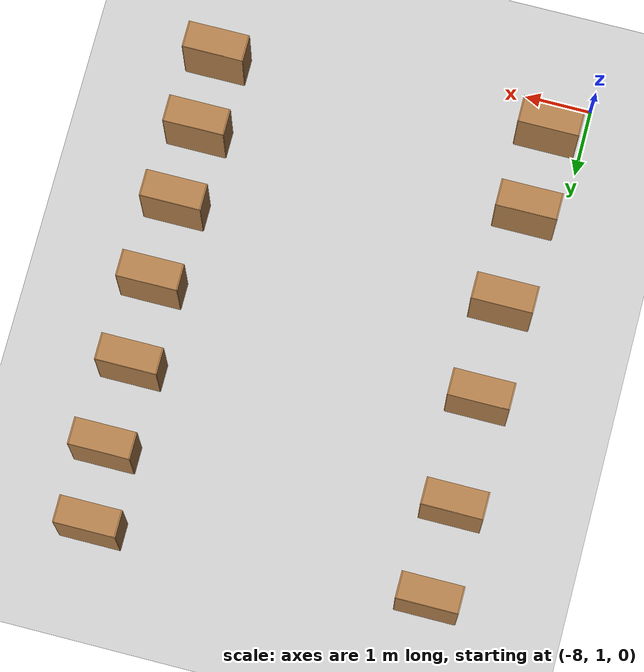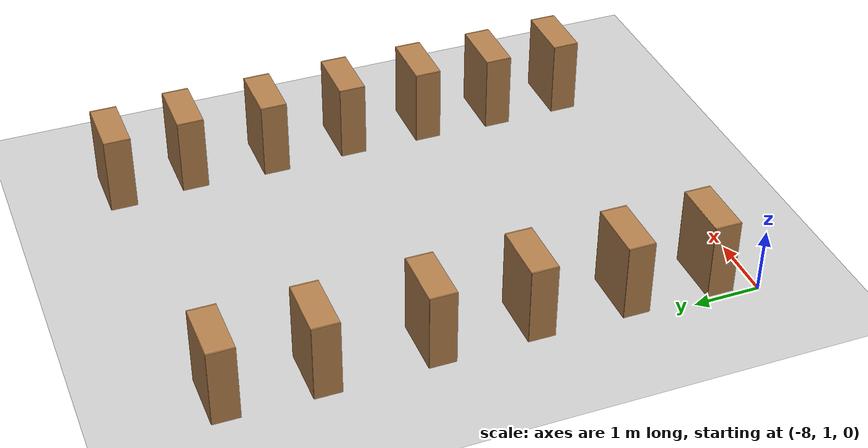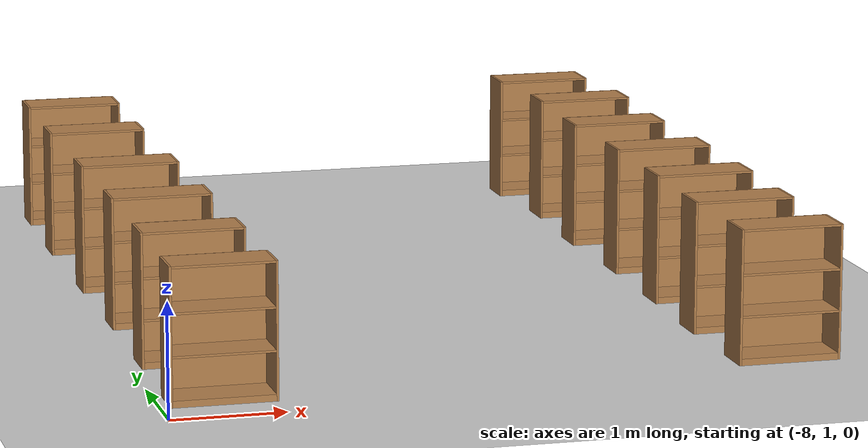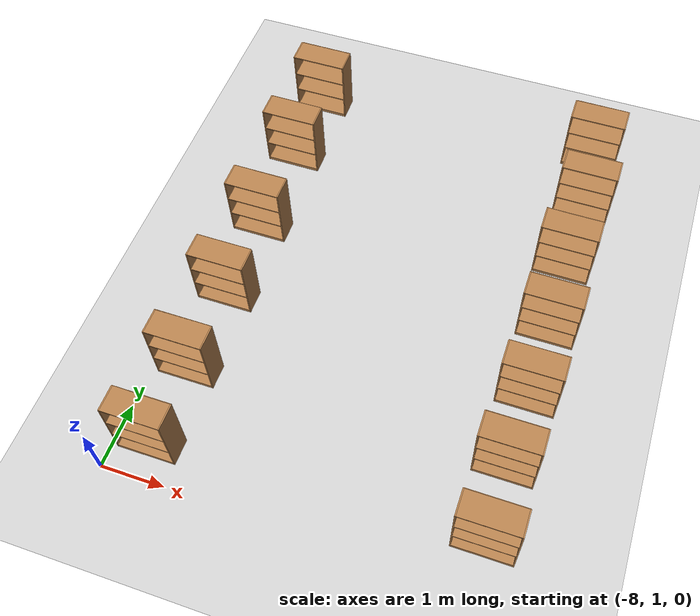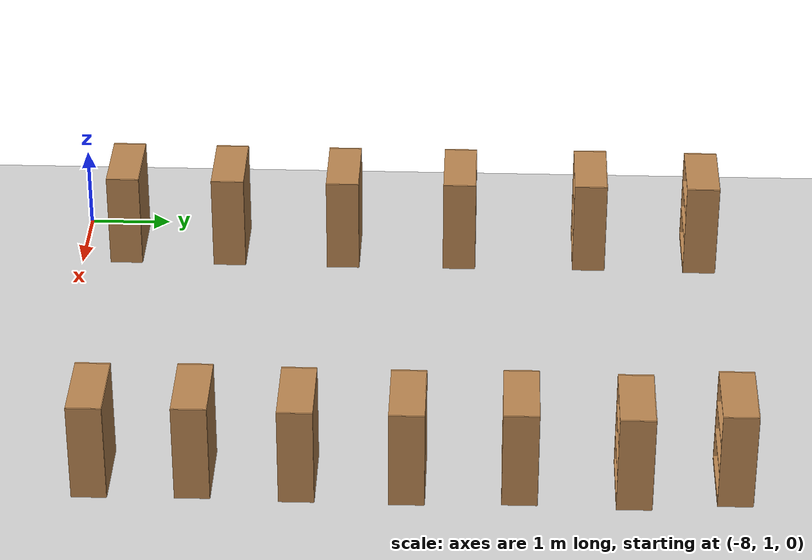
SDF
<sdf version="1.7">
 <world name="default">
  <model name="ground_plane">
   <static>1</static>
   <link name="link">
    <collision name="collision">
     <geometry><plane><normal>0 0 1</normal><size>100 100</size></plane></geometry>
     <surface><friction><ode><mu>100</mu><mu2>50</mu2></ode></friction></surface>
    </collision>
    <visual name="visual">
     <cast_shadows>0</cast_shadows>
     <geometry><plane><normal>0 0 1</normal><size>100 100</size></plane></geometry>
     <material>
      <script><uri>file://media/materials/scripts/gazebo.material</uri><name>Gazebo/Grey</name></script>
     </material>
    </visual>
   </link>
  </model>
  <model name="bookshelf_0">
   <static>1</static>
   <link name="link">
    <inertial><mass>1</mass></inertial>
    <collision name="back">
     <pose>0 0.005 0.6 0 -0 0</pose>
     <geometry><box><size>0.9 0.01 1.2</size></box></geometry>
    </collision>
    <visual name="visual1">
     <pose>0 0.005 0.6 0 -0 0</pose>
     <geometry><box><size>0.9 0.01 1.2</size></box></geometry>
     <material>
      <script><uri>file://media/materials/scripts/gazebo.material</uri><name>Gazebo/Wood</name></script>
     </material>
    </visual>
    <collision name="left_side">
     <pose>0.45 -0.195 0.6 0 -0 0</pose>
     <geometry><box><size>0.02 0.4 1.2</size></box></geometry>
    </collision>
    <visual name="visual2">
     <pose>0.45 -0.195 0.6 0 -0 0</pose>
     <geometry><box><size>0.02 0.4 1.2</size></box></geometry>
     <material>
      <script><uri>file://media/materials/scripts/gazebo.material</uri><name>Gazebo/Wood</name></script>
     </material>
    </visual>
    <collision name="right_side">
     <pose>-0.45 -0.195 0.6 0 -0 0</pose>
     <geometry><box><size>0.02 0.4 1.2</size></box></geometry>
    </collision>
    <visual name="visual3">
     <pose>-0.45 -0.195 0.6 0 -0 0</pose>
     <geometry><box><size>0.02 0.4 1.2</size></box></geometry>
     <material>
      <script><uri>file://media/materials/scripts/gazebo.material</uri><name>Gazebo/Wood</name></script>
     </material>
    </visual>
    <collision name="bottom">
     <pose>0 -0.195 0.03 0 -0 0</pose>
     <geometry><box><size>0.88 0.4 0.06</size></box></geometry>
    </collision>
    <visual name="visual4">
     <pose>0 -0.195 0.03 0 -0 0</pose>
     <geometry><box><size>0.88 0.4 0.06</size></box></geometry>
     <material>
      <script><uri>file://media/materials/scripts/gazebo.material</uri><name>Gazebo/Wood</name></script>
     </material>
    </visual>
    <collision name="top">
     <pose>0 -0.195 1.19 0 -0 0</pose>
     <geometry><box><size>0.88 0.4 0.02</size></box></geometry>
    </collision>
    <visual name="visual5">
     <pose>0 -0.195 1.19 0 -0 0</pose>
     <geometry><box><size>0.88 0.4 0.02</size></box></geometry>
     <material>
      <script><uri>file://media/materials/scripts/gazebo.material</uri><name>Gazebo/Wood</name></script>
     </material>
    </visual>
    <collision name="low_shelf">
     <pose>0 -0.195 0.43 0 -0 0</pose>
     <geometry><box><size>0.88 0.4 0.02</size></box></geometry>
    </collision>
    <visual name="visual6">
     <pose>0 -0.195 0.43 0 -0 0</pose>
     <geometry><box><size>0.88 0.4 0.02</size></box></geometry>
     <material>
      <script><uri>file://media/materials/scripts/gazebo.material</uri><name>Gazebo/Wood</name></script>
     </material>
    </visual>
    <collision name="high_shelf">
     <pose>0 -0.195 0.8 0 -0 0</pose>
     <geometry><box><size>0.88 0.4 0.02</size></box></geometry>
    </collision>
    <visual name="visual7">
     <pose>0 -0.195 0.8 0 -0 0</pose>
     <geometry><box><size>0.88 0.4 0.02</size></box></geometry>
     <material>
      <script><uri>file://media/materials/scripts/gazebo.material</uri><name>Gazebo/Wood</name></script>
     </material>
    </visual>
   </link>
   <pose>-7.44247 8.93177 0 0 -0 0</pose>
  </model>
  <model name="bookshelf_1">
   <static>1</static>
   <link name="link">
    <inertial><mass>1</mass></inertial>
    <collision name="back">
     <pose>0 0.005 0.6 0 -0 0</pose>
     <geometry><box><size>0.9 0.01 1.2</size></box></geometry>
    </collision>
    <visual name="visual1">
     <pose>0 0.005 0.6 0 -0 0</pose>
     <geometry><box><size>0.9 0.01 1.2</size></box></geometry>
     <material>
      <script><uri>file://media/materials/scripts/gazebo.material</uri><name>Gazebo/Wood</name></script>
     </material>
    </visual>
    <collision name="left_side">
     <pose>0.45 -0.195 0.6 0 -0 0</pose>
     <geometry><box><size>0.02 0.4 1.2</size></box></geometry>
    </collision>
    <visual name="visual2">
     <pose>0.45 -0.195 0.6 0 -0 0</pose>
     <geometry><box><size>0.02 0.4 1.2</size></box></geometry>
     <material>
      <script><uri>file://media/materials/scripts/gazebo.material</uri><name>Gazebo/Wood</name></script>
     </material>
    </visual>
    <collision name="right_side">
     <pose>-0.45 -0.195 0.6 0 -0 0</pose>
     <geometry><box><size>0.02 0.4 1.2</size></box></geometry>
    </collision>
    <visual name="visual3">
     <pose>-0.45 -0.195 0.6 0 -0 0</pose>
     <geometry><box><size>0.02 0.4 1.2</size></box></geometry>
     <material>
      <script><uri>file://media/materials/scripts/gazebo.material</uri><name>Gazebo/Wood</name></script>
     </material>
    </visual>
    <collision name="bottom">
     <pose>0 -0.195 0.03 0 -0 0</pose>
     <geometry><box><size>0.88 0.4 0.06</size></box></geometry>
    </collision>
    <visual name="visual4">
     <pose>0 -0.195 0.03 0 -0 0</pose>
     <geometry><box><size>0.88 0.4 0.06</size></box></geometry>
     <material>
      <script><uri>file://media/materials/scripts/gazebo.material</uri><name>Gazebo/Wood</name></script>
     </material>
    </visual>
    <collision name="top">
     <pose>0 -0.195 1.19 0 -0 0</pose>
     <geometry><box><size>0.88 0.4 0.02</size></box></geometry>
    </collision>
    <visual name="visual5">
     <pose>0 -0.195 1.19 0 -0 0</pose>
     <geometry><box><size>0.88 0.4 0.02</size></box></geometry>
     <material>
      <script><uri>file://media/materials/scripts/gazebo.material</uri><name>Gazebo/Wood</name></script>
     </material>
    </visual>
    <collision name="low_shelf">
     <pose>0 -0.195 0.43 0 -0 0</pose>
     <geometry><box><size>0.88 0.4 0.02</size></box></geometry>
    </collision>
    <visual name="visual6">
     <pose>0 -0.195 0.43 0 -0 0</pose>
     <geometry><box><size>0.88 0.4 0.02</size></box></geometry>
     <material>
      <script><uri>file://media/materials/scripts/gazebo.material</uri><name>Gazebo/Wood</name></script>
     </material>
    </visual>
    <collision name="high_shelf">
     <pose>0 -0.195 0.8 0 -0 0</pose>
     <geometry><box><size>0.88 0.4 0.02</size></box></geometry>
    </collision>
    <visual name="visual7">
     <pose>0 -0.195 0.8 0 -0 0</pose>
     <geometry><box><size>0.88 0.4 0.02</size></box></geometry>
     <material>
      <script><uri>file://media/materials/scripts/gazebo.material</uri><name>Gazebo/Wood</name></script>
     </material>
    </visual>
   </link>
   <pose>-7.45904 7.54943 0 0 -0 0</pose>
  </model>
  <model name="bookshelf_2">
   <static>1</static>
   <link name="link">
    <inertial><mass>1</mass></inertial>
    <collision name="back">
     <pose>0 0.005 0.6 0 -0 0</pose>
     <geometry><box><size>0.9 0.01 1.2</size></box></geometry>
    </collision>
    <visual name="visual1">
     <pose>0 0.005 0.6 0 -0 0</pose>
     <geometry><box><size>0.9 0.01 1.2</size></box></geometry>
     <material>
      <script><uri>file://media/materials/scripts/gazebo.material</uri><name>Gazebo/Wood</name></script>
     </material>
    </visual>
    <collision name="left_side">
     <pose>0.45 -0.195 0.6 0 -0 0</pose>
     <geometry><box><size>0.02 0.4 1.2</size></box></geometry>
    </collision>
    <visual name="visual2">
     <pose>0.45 -0.195 0.6 0 -0 0</pose>
     <geometry><box><size>0.02 0.4 1.2</size></box></geometry>
     <material>
      <script><uri>file://media/materials/scripts/gazebo.material</uri><name>Gazebo/Wood</name></script>
     </material>
    </visual>
    <collision name="right_side">
     <pose>-0.45 -0.195 0.6 0 -0 0</pose>
     <geometry><box><size>0.02 0.4 1.2</size></box></geometry>
    </collision>
    <visual name="visual3">
     <pose>-0.45 -0.195 0.6 0 -0 0</pose>
     <geometry><box><size>0.02 0.4 1.2</size></box></geometry>
     <material>
      <script><uri>file://media/materials/scripts/gazebo.material</uri><name>Gazebo/Wood</name></script>
     </material>
    </visual>
    <collision name="bottom">
     <pose>0 -0.195 0.03 0 -0 0</pose>
     <geometry><box><size>0.88 0.4 0.06</size></box></geometry>
    </collision>
    <visual name="visual4">
     <pose>0 -0.195 0.03 0 -0 0</pose>
     <geometry><box><size>0.88 0.4 0.06</size></box></geometry>
     <material>
      <script><uri>file://media/materials/scripts/gazebo.material</uri><name>Gazebo/Wood</name></script>
     </material>
    </visual>
    <collision name="top">
     <pose>0 -0.195 1.19 0 -0 0</pose>
     <geometry><box><size>0.88 0.4 0.02</size></box></geometry>
    </collision>
    <visual name="visual5">
     <pose>0 -0.195 1.19 0 -0 0</pose>
     <geometry><box><size>0.88 0.4 0.02</size></box></geometry>
     <material>
      <script><uri>file://media/materials/scripts/gazebo.material</uri><name>Gazebo/Wood</name></script>
     </material>
    </visual>
    <collision name="low_shelf">
     <pose>0 -0.195 0.43 0 -0 0</pose>
     <geometry><box><size>0.88 0.4 0.02</size></box></geometry>
    </collision>
    <visual name="visual6">
     <pose>0 -0.195 0.43 0 -0 0</pose>
     <geometry><box><size>0.88 0.4 0.02</size></box></geometry>
     <material>
      <script><uri>file://media/materials/scripts/gazebo.material</uri><name>Gazebo/Wood</name></script>
     </material>
    </visual>
    <collision name="high_shelf">
     <pose>0 -0.195 0.8 0 -0 0</pose>
     <geometry><box><size>0.88 0.4 0.02</size></box></geometry>
    </collision>
    <visual name="visual7">
     <pose>0 -0.195 0.8 0 -0 0</pose>
     <geometry><box><size>0.88 0.4 0.02</size></box></geometry>
     <material>
      <script><uri>file://media/materials/scripts/gazebo.material</uri><name>Gazebo/Wood</name></script>
     </material>
    </visual>
   </link>
   <pose>-7.44287 5.92854 0 0 -0 0</pose>
  </model>
  <model name="bookshelf_3">
   <static>1</static>
   <link name="link">
    <inertial><mass>1</mass></inertial>
    <collision name="back">
     <pose>0 0.005 0.6 0 -0 0</pose>
     <geometry><box><size>0.9 0.01 1.2</size></box></geometry>
    </collision>
    <visual name="visual1">
     <pose>0 0.005 0.6 0 -0 0</pose>
     <geometry><box><size>0.9 0.01 1.2</size></box></geometry>
     <material>
      <script><uri>file://media/materials/scripts/gazebo.material</uri><name>Gazebo/Wood</name></script>
     </material>
    </visual>
    <collision name="left_side">
     <pose>0.45 -0.195 0.6 0 -0 0</pose>
     <geometry><box><size>0.02 0.4 1.2</size></box></geometry>
    </collision>
    <visual name="visual2">
     <pose>0.45 -0.195 0.6 0 -0 0</pose>
     <geometry><box><size>0.02 0.4 1.2</size></box></geometry>
     <material>
      <script><uri>file://media/materials/scripts/gazebo.material</uri><name>Gazebo/Wood</name></script>
     </material>
    </visual>
    <collision name="right_side">
     <pose>-0.45 -0.195 0.6 0 -0 0</pose>
     <geometry><box><size>0.02 0.4 1.2</size></box></geometry>
    </collision>
    <visual name="visual3">
     <pose>-0.45 -0.195 0.6 0 -0 0</pose>
     <geometry><box><size>0.02 0.4 1.2</size></box></geometry>
     <material>
      <script><uri>file://media/materials/scripts/gazebo.material</uri><name>Gazebo/Wood</name></script>
     </material>
    </visual>
    <collision name="bottom">
     <pose>0 -0.195 0.03 0 -0 0</pose>
     <geometry><box><size>0.88 0.4 0.06</size></box></geometry>
    </collision>
    <visual name="visual4">
     <pose>0 -0.195 0.03 0 -0 0</pose>
     <geometry><box><size>0.88 0.4 0.06</size></box></geometry>
     <material>
      <script><uri>file://media/materials/scripts/gazebo.material</uri><name>Gazebo/Wood</name></script>
     </material>
    </visual>
    <collision name="top">
     <pose>0 -0.195 1.19 0 -0 0</pose>
     <geometry><box><size>0.88 0.4 0.02</size></box></geometry>
    </collision>
    <visual name="visual5">
     <pose>0 -0.195 1.19 0 -0 0</pose>
     <geometry><box><size>0.88 0.4 0.02</size></box></geometry>
     <material>
      <script><uri>file://media/materials/scripts/gazebo.material</uri><name>Gazebo/Wood</name></script>
     </material>
    </visual>
    <collision name="low_shelf">
     <pose>0 -0.195 0.43 0 -0 0</pose>
     <geometry><box><size>0.88 0.4 0.02</size></box></geometry>
    </collision>
    <visual name="visual6">
     <pose>0 -0.195 0.43 0 -0 0</pose>
     <geometry><box><size>0.88 0.4 0.02</size></box></geometry>
     <material>
      <script><uri>file://media/materials/scripts/gazebo.material</uri><name>Gazebo/Wood</name></script>
     </material>
    </visual>
    <collision name="high_shelf">
     <pose>0 -0.195 0.8 0 -0 0</pose>
     <geometry><box><size>0.88 0.4 0.02</size></box></geometry>
    </collision>
    <visual name="visual7">
     <pose>0 -0.195 0.8 0 -0 0</pose>
     <geometry><box><size>0.88 0.4 0.02</size></box></geometry>
     <material>
      <script><uri>file://media/materials/scripts/gazebo.material</uri><name>Gazebo/Wood</name></script>
     </material>
    </visual>
   </link>
   <pose>-7.43021 4.47652 0 0 -0 0</pose>
  </model>
  <model name="bookshelf_4">
   <static>1</static>
   <link name="link">
    <inertial><mass>1</mass></inertial>
    <collision name="back">
     <pose>0 0.005 0.6 0 -0 0</pose>
     <geometry><box><size>0.9 0.01 1.2</size></box></geometry>
    </collision>
    <visual name="visual1">
     <pose>0 0.005 0.6 0 -0 0</pose>
     <geometry><box><size>0.9 0.01 1.2</size></box></geometry>
     <material>
      <script><uri>file://media/materials/scripts/gazebo.material</uri><name>Gazebo/Wood</name></script>
     </material>
    </visual>
    <collision name="left_side">
     <pose>0.45 -0.195 0.6 0 -0 0</pose>
     <geometry><box><size>0.02 0.4 1.2</size></box></geometry>
    </collision>
    <visual name="visual2">
     <pose>0.45 -0.195 0.6 0 -0 0</pose>
     <geometry><box><size>0.02 0.4 1.2</size></box></geometry>
     <material>
      <script><uri>file://media/materials/scripts/gazebo.material</uri><name>Gazebo/Wood</name></script>
     </material>
    </visual>
    <collision name="right_side">
     <pose>-0.45 -0.195 0.6 0 -0 0</pose>
     <geometry><box><size>0.02 0.4 1.2</size></box></geometry>
    </collision>
    <visual name="visual3">
     <pose>-0.45 -0.195 0.6 0 -0 0</pose>
     <geometry><box><size>0.02 0.4 1.2</size></box></geometry>
     <material>
      <script><uri>file://media/materials/scripts/gazebo.material</uri><name>Gazebo/Wood</name></script>
     </material>
    </visual>
    <collision name="bottom">
     <pose>0 -0.195 0.03 0 -0 0</pose>
     <geometry><box><size>0.88 0.4 0.06</size></box></geometry>
    </collision>
    <visual name="visual4">
     <pose>0 -0.195 0.03 0 -0 0</pose>
     <geometry><box><size>0.88 0.4 0.06</size></box></geometry>
     <material>
      <script><uri>file://media/materials/scripts/gazebo.material</uri><name>Gazebo/Wood</name></script>
     </material>
    </visual>
    <collision name="top">
     <pose>0 -0.195 1.19 0 -0 0</pose>
     <geometry><box><size>0.88 0.4 0.02</size></box></geometry>
    </collision>
    <visual name="visual5">
     <pose>0 -0.195 1.19 0 -0 0</pose>
     <geometry><box><size>0.88 0.4 0.02</size></box></geometry>
     <material>
      <script><uri>file://media/materials/scripts/gazebo.material</uri><name>Gazebo/Wood</name></script>
     </material>
    </visual>
    <collision name="low_shelf">
     <pose>0 -0.195 0.43 0 -0 0</pose>
     <geometry><box><size>0.88 0.4 0.02</size></box></geometry>
    </collision>
    <visual name="visual6">
     <pose>0 -0.195 0.43 0 -0 0</pose>
     <geometry><box><size>0.88 0.4 0.02</size></box></geometry>
     <material>
      <script><uri>file://media/materials/scripts/gazebo.material</uri><name>Gazebo/Wood</name></script>
     </material>
    </visual>
    <collision name="high_shelf">
     <pose>0 -0.195 0.8 0 -0 0</pose>
     <geometry><box><size>0.88 0.4 0.02</size></box></geometry>
    </collision>
    <visual name="visual7">
     <pose>0 -0.195 0.8 0 -0 0</pose>
     <geometry><box><size>0.88 0.4 0.02</size></box></geometry>
     <material>
      <script><uri>file://media/materials/scripts/gazebo.material</uri><name>Gazebo/Wood</name></script>
     </material>
    </visual>
   </link>
   <pose>-7.44126 3.05021 0 0 -0 0</pose>
  </model>
  <model name="bookshelf_5">
   <static>1</static>
   <link name="link">
    <inertial><mass>1</mass></inertial>
    <collision name="back">
     <pose>0 0.005 0.6 0 -0 0</pose>
     <geometry><box><size>0.9 0.01 1.2</size></box></geometry>
    </collision>
    <visual name="visual1">
     <pose>0 0.005 0.6 0 -0 0</pose>
     <geometry><box><size>0.9 0.01 1.2</size></box></geometry>
     <material>
      <script><uri>file://media/materials/scripts/gazebo.material</uri><name>Gazebo/Wood</name></script>
     </material>
    </visual>
    <collision name="left_side">
     <pose>0.45 -0.195 0.6 0 -0 0</pose>
     <geometry><box><size>0.02 0.4 1.2</size></box></geometry>
    </collision>
    <visual name="visual2">
     <pose>0.45 -0.195 0.6 0 -0 0</pose>
     <geometry><box><size>0.02 0.4 1.2</size></box></geometry>
     <material>
      <script><uri>file://media/materials/scripts/gazebo.material</uri><name>Gazebo/Wood</name></script>
     </material>
    </visual>
    <collision name="right_side">
     <pose>-0.45 -0.195 0.6 0 -0 0</pose>
     <geometry><box><size>0.02 0.4 1.2</size></box></geometry>
    </collision>
    <visual name="visual3">
     <pose>-0.45 -0.195 0.6 0 -0 0</pose>
     <geometry><box><size>0.02 0.4 1.2</size></box></geometry>
     <material>
      <script><uri>file://media/materials/scripts/gazebo.material</uri><name>Gazebo/Wood</name></script>
     </material>
    </visual>
    <collision name="bottom">
     <pose>0 -0.195 0.03 0 -0 0</pose>
     <geometry><box><size>0.88 0.4 0.06</size></box></geometry>
    </collision>
    <visual name="visual4">
     <pose>0 -0.195 0.03 0 -0 0</pose>
     <geometry><box><size>0.88 0.4 0.06</size></box></geometry>
     <material>
      <script><uri>file://media/materials/scripts/gazebo.material</uri><name>Gazebo/Wood</name></script>
     </material>
    </visual>
    <collision name="top">
     <pose>0 -0.195 1.19 0 -0 0</pose>
     <geometry><box><size>0.88 0.4 0.02</size></box></geometry>
    </collision>
    <visual name="visual5">
     <pose>0 -0.195 1.19 0 -0 0</pose>
     <geometry><box><size>0.88 0.4 0.02</size></box></geometry>
     <material>
      <script><uri>file://media/materials/scripts/gazebo.material</uri><name>Gazebo/Wood</name></script>
     </material>
    </visual>
    <collision name="low_shelf">
     <pose>0 -0.195 0.43 0 -0 0</pose>
     <geometry><box><size>0.88 0.4 0.02</size></box></geometry>
    </collision>
    <visual name="visual6">
     <pose>0 -0.195 0.43 0 -0 0</pose>
     <geometry><box><size>0.88 0.4 0.02</size></box></geometry>
     <material>
      <script><uri>file://media/materials/scripts/gazebo.material</uri><name>Gazebo/Wood</name></script>
     </material>
    </visual>
    <collision name="high_shelf">
     <pose>0 -0.195 0.8 0 -0 0</pose>
     <geometry><box><size>0.88 0.4 0.02</size></box></geometry>
    </collision>
    <visual name="visual7">
     <pose>0 -0.195 0.8 0 -0 0</pose>
     <geometry><box><size>0.88 0.4 0.02</size></box></geometry>
     <material>
      <script><uri>file://media/materials/scripts/gazebo.material</uri><name>Gazebo/Wood</name></script>
     </material>
    </visual>
   </link>
   <pose>-7.4542 1.74877 0 0 -0 0</pose>
  </model>
  <model name="bookshelf_16">
   <static>1</static>
   <link name="link">
    <inertial><mass>1</mass></inertial>
    <collision name="back">
     <pose>0 0.005 0.6 0 -0 0</pose>
     <geometry><box><size>0.9 0.01 1.2</size></box></geometry>
    </collision>
    <visual name="visual1">
     <pose>0 0.005 0.6 0 -0 0</pose>
     <geometry><box><size>0.9 0.01 1.2</size></box></geometry>
     <material>
      <script><uri>file://media/materials/scripts/gazebo.material</uri><name>Gazebo/Wood</name></script>
     </material>
    </visual>
    <collision name="left_side">
     <pose>0.45 -0.195 0.6 0 -0 0</pose>
     <geometry><box><size>0.02 0.4 1.2</size></box></geometry>
    </collision>
    <visual name="visual2">
     <pose>0.45 -0.195 0.6 0 -0 0</pose>
     <geometry><box><size>0.02 0.4 1.2</size></box></geometry>
     <material>
      <script><uri>file://media/materials/scripts/gazebo.material</uri><name>Gazebo/Wood</name></script>
     </material>
    </visual>
    <collision name="right_side">
     <pose>-0.45 -0.195 0.6 0 -0 0</pose>
     <geometry><box><size>0.02 0.4 1.2</size></box></geometry>
    </collision>
    <visual name="visual3">
     <pose>-0.45 -0.195 0.6 0 -0 0</pose>
     <geometry><box><size>0.02 0.4 1.2</size></box></geometry>
     <material>
      <script><uri>file://media/materials/scripts/gazebo.material</uri><name>Gazebo/Wood</name></script>
     </material>
    </visual>
    <collision name="bottom">
     <pose>0 -0.195 0.03 0 -0 0</pose>
     <geometry><box><size>0.88 0.4 0.06</size></box></geometry>
    </collision>
    <visual name="visual4">
     <pose>0 -0.195 0.03 0 -0 0</pose>
     <geometry><box><size>0.88 0.4 0.06</size></box></geometry>
     <material>
      <script><uri>file://media/materials/scripts/gazebo.material</uri><name>Gazebo/Wood</name></script>
     </material>
    </visual>
    <collision name="top">
     <pose>0 -0.195 1.19 0 -0 0</pose>
     <geometry><box><size>0.88 0.4 0.02</size></box></geometry>
    </collision>
    <visual name="visual5">
     <pose>0 -0.195 1.19 0 -0 0</pose>
     <geometry><box><size>0.88 0.4 0.02</size></box></geometry>
     <material>
      <script><uri>file://media/materials/scripts/gazebo.material</uri><name>Gazebo/Wood</name></script>
     </material>
    </visual>
    <collision name="low_shelf">
     <pose>0 -0.195 0.43 0 -0 0</pose>
     <geometry><box><size>0.88 0.4 0.02</size></box></geometry>
    </collision>
    <visual name="visual6">
     <pose>0 -0.195 0.43 0 -0 0</pose>
     <geometry><box><size>0.88 0.4 0.02</size></box></geometry>
     <material>
      <script><uri>file://media/materials/scripts/gazebo.material</uri><name>Gazebo/Wood</name></script>
     </material>
    </visual>
    <collision name="high_shelf">
     <pose>0 -0.195 0.8 0 -0 0</pose>
     <geometry><box><size>0.88 0.4 0.02</size></box></geometry>
    </collision>
    <visual name="visual7">
     <pose>0 -0.195 0.8 0 -0 0</pose>
     <geometry><box><size>0.88 0.4 0.02</size></box></geometry>
     <material>
      <script><uri>file://media/materials/scripts/gazebo.material</uri><name>Gazebo/Wood</name></script>
     </material>
    </visual>
   </link>
   <pose>-2.44796 1.87551 0 0 -0 0</pose>
  </model>
  <model name="bookshelf_17">
   <static>1</static>
   <link name="link">
    <inertial><mass>1</mass></inertial>
    <collision name="back">
     <pose>0 0.005 0.6 0 -0 0</pose>
     <geometry><box><size>0.9 0.01 1.2</size></box></geometry>
    </collision>
    <visual name="visual1">
     <pose>0 0.005 0.6 0 -0 0</pose>
     <geometry><box><size>0.9 0.01 1.2</size></box></geometry>
     <material>
      <script><uri>file://media/materials/scripts/gazebo.material</uri><name>Gazebo/Wood</name></script>
     </material>
    </visual>
    <collision name="left_side">
     <pose>0.45 -0.195 0.6 0 -0 0</pose>
     <geometry><box><size>0.02 0.4 1.2</size></box></geometry>
    </collision>
    <visual name="visual2">
     <pose>0.45 -0.195 0.6 0 -0 0</pose>
     <geometry><box><size>0.02 0.4 1.2</size></box></geometry>
     <material>
      <script><uri>file://media/materials/scripts/gazebo.material</uri><name>Gazebo/Wood</name></script>
     </material>
    </visual>
    <collision name="right_side">
     <pose>-0.45 -0.195 0.6 0 -0 0</pose>
     <geometry><box><size>0.02 0.4 1.2</size></box></geometry>
    </collision>
    <visual name="visual3">
     <pose>-0.45 -0.195 0.6 0 -0 0</pose>
     <geometry><box><size>0.02 0.4 1.2</size></box></geometry>
     <material>
      <script><uri>file://media/materials/scripts/gazebo.material</uri><name>Gazebo/Wood</name></script>
     </material>
    </visual>
    <collision name="bottom">
     <pose>0 -0.195 0.03 0 -0 0</pose>
     <geometry><box><size>0.88 0.4 0.06</size></box></geometry>
    </collision>
    <visual name="visual4">
     <pose>0 -0.195 0.03 0 -0 0</pose>
     <geometry><box><size>0.88 0.4 0.06</size></box></geometry>
     <material>
      <script><uri>file://media/materials/scripts/gazebo.material</uri><name>Gazebo/Wood</name></script>
     </material>
    </visual>
    <collision name="top">
     <pose>0 -0.195 1.19 0 -0 0</pose>
     <geometry><box><size>0.88 0.4 0.02</size></box></geometry>
    </collision>
    <visual name="visual5">
     <pose>0 -0.195 1.19 0 -0 0</pose>
     <geometry><box><size>0.88 0.4 0.02</size></box></geometry>
     <material>
      <script><uri>file://media/materials/scripts/gazebo.material</uri><name>Gazebo/Wood</name></script>
     </material>
    </visual>
    <collision name="low_shelf">
     <pose>0 -0.195 0.43 0 -0 0</pose>
     <geometry><box><size>0.88 0.4 0.02</size></box></geometry>
    </collision>
    <visual name="visual6">
     <pose>0 -0.195 0.43 0 -0 0</pose>
     <geometry><box><size>0.88 0.4 0.02</size></box></geometry>
     <material>
      <script><uri>file://media/materials/scripts/gazebo.material</uri><name>Gazebo/Wood</name></script>
     </material>
    </visual>
    <collision name="high_shelf">
     <pose>0 -0.195 0.8 0 -0 0</pose>
     <geometry><box><size>0.88 0.4 0.02</size></box></geometry>
    </collision>
    <visual name="visual7">
     <pose>0 -0.195 0.8 0 -0 0</pose>
     <geometry><box><size>0.88 0.4 0.02</size></box></geometry>
     <material>
      <script><uri>file://media/materials/scripts/gazebo.material</uri><name>Gazebo/Wood</name></script>
     </material>
    </visual>
   </link>
   <pose>-2.46811 3.03168 0 0 -0 0</pose>
  </model>
  <model name="bookshelf_18">
   <static>1</static>
   <link name="link">
    <inertial><mass>1</mass></inertial>
    <collision name="back">
     <pose>0 0.005 0.6 0 -0 0</pose>
     <geometry><box><size>0.9 0.01 1.2</size></box></geometry>
    </collision>
    <visual name="visual1">
     <pose>0 0.005 0.6 0 -0 0</pose>
     <geometry><box><size>0.9 0.01 1.2</size></box></geometry>
     <material>
      <script><uri>file://media/materials/scripts/gazebo.material</uri><name>Gazebo/Wood</name></script>
     </material>
    </visual>
    <collision name="left_side">
     <pose>0.45 -0.195 0.6 0 -0 0</pose>
     <geometry><box><size>0.02 0.4 1.2</size></box></geometry>
    </collision>
    <visual name="visual2">
     <pose>0.45 -0.195 0.6 0 -0 0</pose>
     <geometry><box><size>0.02 0.4 1.2</size></box></geometry>
     <material>
      <script><uri>file://media/materials/scripts/gazebo.material</uri><name>Gazebo/Wood</name></script>
     </material>
    </visual>
    <collision name="right_side">
     <pose>-0.45 -0.195 0.6 0 -0 0</pose>
     <geometry><box><size>0.02 0.4 1.2</size></box></geometry>
    </collision>
    <visual name="visual3">
     <pose>-0.45 -0.195 0.6 0 -0 0</pose>
     <geometry><box><size>0.02 0.4 1.2</size></box></geometry>
     <material>
      <script><uri>file://media/materials/scripts/gazebo.material</uri><name>Gazebo/Wood</name></script>
     </material>
    </visual>
    <collision name="bottom">
     <pose>0 -0.195 0.03 0 -0 0</pose>
     <geometry><box><size>0.88 0.4 0.06</size></box></geometry>
    </collision>
    <visual name="visual4">
     <pose>0 -0.195 0.03 0 -0 0</pose>
     <geometry><box><size>0.88 0.4 0.06</size></box></geometry>
     <material>
      <script><uri>file://media/materials/scripts/gazebo.material</uri><name>Gazebo/Wood</name></script>
     </material>
    </visual>
    <collision name="top">
     <pose>0 -0.195 1.19 0 -0 0</pose>
     <geometry><box><size>0.88 0.4 0.02</size></box></geometry>
    </collision>
    <visual name="visual5">
     <pose>0 -0.195 1.19 0 -0 0</pose>
     <geometry><box><size>0.88 0.4 0.02</size></box></geometry>
     <material>
      <script><uri>file://media/materials/scripts/gazebo.material</uri><name>Gazebo/Wood</name></script>
     </material>
    </visual>
    <collision name="low_shelf">
     <pose>0 -0.195 0.43 0 -0 0</pose>
     <geometry><box><size>0.88 0.4 0.02</size></box></geometry>
    </collision>
    <visual name="visual6">
     <pose>0 -0.195 0.43 0 -0 0</pose>
     <geometry><box><size>0.88 0.4 0.02</size></box></geometry>
     <material>
      <script><uri>file://media/materials/scripts/gazebo.material</uri><name>Gazebo/Wood</name></script>
     </material>
    </visual>
    <collision name="high_shelf">
     <pose>0 -0.195 0.8 0 -0 0</pose>
     <geometry><box><size>0.88 0.4 0.02</size></box></geometry>
    </collision>
    <visual name="visual7">
     <pose>0 -0.195 0.8 0 -0 0</pose>
     <geometry><box><size>0.88 0.4 0.02</size></box></geometry>
     <material>
      <script><uri>file://media/materials/scripts/gazebo.material</uri><name>Gazebo/Wood</name></script>
     </material>
    </visual>
   </link>
   <pose>-2.43593 4.19994 0 0 -0 0</pose>
  </model>
  <model name="bookshelf_19">
   <static>1</static>
   <link name="link">
    <inertial><mass>1</mass></inertial>
    <collision name="back">
     <pose>0 0.005 0.6 0 -0 0</pose>
     <geometry><box><size>0.9 0.01 1.2</size></box></geometry>
    </collision>
    <visual name="visual1">
     <pose>0 0.005 0.6 0 -0 0</pose>
     <geometry><box><size>0.9 0.01 1.2</size></box></geometry>
     <material>
      <script><uri>file://media/materials/scripts/gazebo.material</uri><name>Gazebo/Wood</name></script>
     </material>
    </visual>
    <collision name="left_side">
     <pose>0.45 -0.195 0.6 0 -0 0</pose>
     <geometry><box><size>0.02 0.4 1.2</size></box></geometry>
    </collision>
    <visual name="visual2">
     <pose>0.45 -0.195 0.6 0 -0 0</pose>
     <geometry><box><size>0.02 0.4 1.2</size></box></geometry>
     <material>
      <script><uri>file://media/materials/scripts/gazebo.material</uri><name>Gazebo/Wood</name></script>
     </material>
    </visual>
    <collision name="right_side">
     <pose>-0.45 -0.195 0.6 0 -0 0</pose>
     <geometry><box><size>0.02 0.4 1.2</size></box></geometry>
    </collision>
    <visual name="visual3">
     <pose>-0.45 -0.195 0.6 0 -0 0</pose>
     <geometry><box><size>0.02 0.4 1.2</size></box></geometry>
     <material>
      <script><uri>file://media/materials/scripts/gazebo.material</uri><name>Gazebo/Wood</name></script>
     </material>
    </visual>
    <collision name="bottom">
     <pose>0 -0.195 0.03 0 -0 0</pose>
     <geometry><box><size>0.88 0.4 0.06</size></box></geometry>
    </collision>
    <visual name="visual4">
     <pose>0 -0.195 0.03 0 -0 0</pose>
     <geometry><box><size>0.88 0.4 0.06</size></box></geometry>
     <material>
      <script><uri>file://media/materials/scripts/gazebo.material</uri><name>Gazebo/Wood</name></script>
     </material>
    </visual>
    <collision name="top">
     <pose>0 -0.195 1.19 0 -0 0</pose>
     <geometry><box><size>0.88 0.4 0.02</size></box></geometry>
    </collision>
    <visual name="visual5">
     <pose>0 -0.195 1.19 0 -0 0</pose>
     <geometry><box><size>0.88 0.4 0.02</size></box></geometry>
     <material>
      <script><uri>file://media/materials/scripts/gazebo.material</uri><name>Gazebo/Wood</name></script>
     </material>
    </visual>
    <collision name="low_shelf">
     <pose>0 -0.195 0.43 0 -0 0</pose>
     <geometry><box><size>0.88 0.4 0.02</size></box></geometry>
    </collision>
    <visual name="visual6">
     <pose>0 -0.195 0.43 0 -0 0</pose>
     <geometry><box><size>0.88 0.4 0.02</size></box></geometry>
     <material>
      <script><uri>file://media/materials/scripts/gazebo.material</uri><name>Gazebo/Wood</name></script>
     </material>
    </visual>
    <collision name="high_shelf">
     <pose>0 -0.195 0.8 0 -0 0</pose>
     <geometry><box><size>0.88 0.4 0.02</size></box></geometry>
    </collision>
    <visual name="visual7">
     <pose>0 -0.195 0.8 0 -0 0</pose>
     <geometry><box><size>0.88 0.4 0.02</size></box></geometry>
     <material>
      <script><uri>file://media/materials/scripts/gazebo.material</uri><name>Gazebo/Wood</name></script>
     </material>
    </visual>
   </link>
   <pose>-2.4232 5.43217 0 0 -0 0</pose>
  </model>
  <model name="bookshelf_20">
   <static>1</static>
   <link name="link">
    <inertial><mass>1</mass></inertial>
    <collision name="back">
     <pose>0 0.005 0.6 0 -0 0</pose>
     <geometry><box><size>0.9 0.01 1.2</size></box></geometry>
    </collision>
    <visual name="visual1">
     <pose>0 0.005 0.6 0 -0 0</pose>
     <geometry><box><size>0.9 0.01 1.2</size></box></geometry>
     <material>
      <script><uri>file://media/materials/scripts/gazebo.material</uri><name>Gazebo/Wood</name></script>
     </material>
    </visual>
    <collision name="left_side">
     <pose>0.45 -0.195 0.6 0 -0 0</pose>
     <geometry><box><size>0.02 0.4 1.2</size></box></geometry>
    </collision>
    <visual name="visual2">
     <pose>0.45 -0.195 0.6 0 -0 0</pose>
     <geometry><box><size>0.02 0.4 1.2</size></box></geometry>
     <material>
      <script><uri>file://media/materials/scripts/gazebo.material</uri><name>Gazebo/Wood</name></script>
     </material>
    </visual>
    <collision name="right_side">
     <pose>-0.45 -0.195 0.6 0 -0 0</pose>
     <geometry><box><size>0.02 0.4 1.2</size></box></geometry>
    </collision>
    <visual name="visual3">
     <pose>-0.45 -0.195 0.6 0 -0 0</pose>
     <geometry><box><size>0.02 0.4 1.2</size></box></geometry>
     <material>
      <script><uri>file://media/materials/scripts/gazebo.material</uri><name>Gazebo/Wood</name></script>
     </material>
    </visual>
    <collision name="bottom">
     <pose>0 -0.195 0.03 0 -0 0</pose>
     <geometry><box><size>0.88 0.4 0.06</size></box></geometry>
    </collision>
    <visual name="visual4">
     <pose>0 -0.195 0.03 0 -0 0</pose>
     <geometry><box><size>0.88 0.4 0.06</size></box></geometry>
     <material>
      <script><uri>file://media/materials/scripts/gazebo.material</uri><name>Gazebo/Wood</name></script>
     </material>
    </visual>
    <collision name="top">
     <pose>0 -0.195 1.19 0 -0 0</pose>
     <geometry><box><size>0.88 0.4 0.02</size></box></geometry>
    </collision>
    <visual name="visual5">
     <pose>0 -0.195 1.19 0 -0 0</pose>
     <geometry><box><size>0.88 0.4 0.02</size></box></geometry>
     <material>
      <script><uri>file://media/materials/scripts/gazebo.material</uri><name>Gazebo/Wood</name></script>
     </material>
    </visual>
    <collision name="low_shelf">
     <pose>0 -0.195 0.43 0 -0 0</pose>
     <geometry><box><size>0.88 0.4 0.02</size></box></geometry>
    </collision>
    <visual name="visual6">
     <pose>0 -0.195 0.43 0 -0 0</pose>
     <geometry><box><size>0.88 0.4 0.02</size></box></geometry>
     <material>
      <script><uri>file://media/materials/scripts/gazebo.material</uri><name>Gazebo/Wood</name></script>
     </material>
    </visual>
    <collision name="high_shelf">
     <pose>0 -0.195 0.8 0 -0 0</pose>
     <geometry><box><size>0.88 0.4 0.02</size></box></geometry>
    </collision>
    <visual name="visual7">
     <pose>0 -0.195 0.8 0 -0 0</pose>
     <geometry><box><size>0.88 0.4 0.02</size></box></geometry>
     <material>
      <script><uri>file://media/materials/scripts/gazebo.material</uri><name>Gazebo/Wood</name></script>
     </material>
    </visual>
   </link>
   <pose>-2.45829 6.69067 0 0 -0 0</pose>
  </model>
  <model name="bookshelf_21">
   <static>1</static>
   <link name="link">
    <inertial><mass>1</mass></inertial>
    <collision name="back">
     <pose>0 0.005 0.6 0 -0 0</pose>
     <geometry><box><size>0.9 0.01 1.2</size></box></geometry>
    </collision>
    <visual name="visual1">
     <pose>0 0.005 0.6 0 -0 0</pose>
     <geometry><box><size>0.9 0.01 1.2</size></box></geometry>
     <material>
      <script><uri>file://media/materials/scripts/gazebo.material</uri><name>Gazebo/Wood</name></script>
     </material>
    </visual>
    <collision name="left_side">
     <pose>0.45 -0.195 0.6 0 -0 0</pose>
     <geometry><box><size>0.02 0.4 1.2</size></box></geometry>
    </collision>
    <visual name="visual2">
     <pose>0.45 -0.195 0.6 0 -0 0</pose>
     <geometry><box><size>0.02 0.4 1.2</size></box></geometry>
     <material>
      <script><uri>file://media/materials/scripts/gazebo.material</uri><name>Gazebo/Wood</name></script>
     </material>
    </visual>
    <collision name="right_side">
     <pose>-0.45 -0.195 0.6 0 -0 0</pose>
     <geometry><box><size>0.02 0.4 1.2</size></box></geometry>
    </collision>
    <visual name="visual3">
     <pose>-0.45 -0.195 0.6 0 -0 0</pose>
     <geometry><box><size>0.02 0.4 1.2</size></box></geometry>
     <material>
      <script><uri>file://media/materials/scripts/gazebo.material</uri><name>Gazebo/Wood</name></script>
     </material>
    </visual>
    <collision name="bottom">
     <pose>0 -0.195 0.03 0 -0 0</pose>
     <geometry><box><size>0.88 0.4 0.06</size></box></geometry>
    </collision>
    <visual name="visual4">
     <pose>0 -0.195 0.03 0 -0 0</pose>
     <geometry><box><size>0.88 0.4 0.06</size></box></geometry>
     <material>
      <script><uri>file://media/materials/scripts/gazebo.material</uri><name>Gazebo/Wood</name></script>
     </material>
    </visual>
    <collision name="top">
     <pose>0 -0.195 1.19 0 -0 0</pose>
     <geometry><box><size>0.88 0.4 0.02</size></box></geometry>
    </collision>
    <visual name="visual5">
     <pose>0 -0.195 1.19 0 -0 0</pose>
     <geometry><box><size>0.88 0.4 0.02</size></box></geometry>
     <material>
      <script><uri>file://media/materials/scripts/gazebo.material</uri><name>Gazebo/Wood</name></script>
     </material>
    </visual>
    <collision name="low_shelf">
     <pose>0 -0.195 0.43 0 -0 0</pose>
     <geometry><box><size>0.88 0.4 0.02</size></box></geometry>
    </collision>
    <visual name="visual6">
     <pose>0 -0.195 0.43 0 -0 0</pose>
     <geometry><box><size>0.88 0.4 0.02</size></box></geometry>
     <material>
      <script><uri>file://media/materials/scripts/gazebo.material</uri><name>Gazebo/Wood</name></script>
     </material>
    </visual>
    <collision name="high_shelf">
     <pose>0 -0.195 0.8 0 -0 0</pose>
     <geometry><box><size>0.88 0.4 0.02</size></box></geometry>
    </collision>
    <visual name="visual7">
     <pose>0 -0.195 0.8 0 -0 0</pose>
     <geometry><box><size>0.88 0.4 0.02</size></box></geometry>
     <material>
      <script><uri>file://media/materials/scripts/gazebo.material</uri><name>Gazebo/Wood</name></script>
     </material>
    </visual>
   </link>
   <pose>-2.41481 7.96585 0 0 -0 0</pose>
  </model>
  <model name="bookshelf_22">
   <static>1</static>
   <link name="link">
    <inertial><mass>1</mass></inertial>
    <collision name="back">
     <pose>0 0.005 0.6 0 -0 0</pose>
     <geometry><box><size>0.9 0.01 1.2</size></box></geometry>
    </collision>
    <visual name="visual1">
     <pose>0 0.005 0.6 0 -0 0</pose>
     <geometry><box><size>0.9 0.01 1.2</size></box></geometry>
     <material>
      <script><uri>file://media/materials/scripts/gazebo.material</uri><name>Gazebo/Wood</name></script>
     </material>
    </visual>
    <collision name="left_side">
     <pose>0.45 -0.195 0.6 0 -0 0</pose>
     <geometry><box><size>0.02 0.4 1.2</size></box></geometry>
    </collision>
    <visual name="visual2">
     <pose>0.45 -0.195 0.6 0 -0 0</pose>
     <geometry><box><size>0.02 0.4 1.2</size></box></geometry>
     <material>
      <script><uri>file://media/materials/scripts/gazebo.material</uri><name>Gazebo/Wood</name></script>
     </material>
    </visual>
    <collision name="right_side">
     <pose>-0.45 -0.195 0.6 0 -0 0</pose>
     <geometry><box><size>0.02 0.4 1.2</size></box></geometry>
    </collision>
    <visual name="visual3">
     <pose>-0.45 -0.195 0.6 0 -0 0</pose>
     <geometry><box><size>0.02 0.4 1.2</size></box></geometry>
     <material>
      <script><uri>file://media/materials/scripts/gazebo.material</uri><name>Gazebo/Wood</name></script>
     </material>
    </visual>
    <collision name="bottom">
     <pose>0 -0.195 0.03 0 -0 0</pose>
     <geometry><box><size>0.88 0.4 0.06</size></box></geometry>
    </collision>
    <visual name="visual4">
     <pose>0 -0.195 0.03 0 -0 0</pose>
     <geometry><box><size>0.88 0.4 0.06</size></box></geometry>
     <material>
      <script><uri>file://media/materials/scripts/gazebo.material</uri><name>Gazebo/Wood</name></script>
     </material>
    </visual>
    <collision name="top">
     <pose>0 -0.195 1.19 0 -0 0</pose>
     <geometry><box><size>0.88 0.4 0.02</size></box></geometry>
    </collision>
    <visual name="visual5">
     <pose>0 -0.195 1.19 0 -0 0</pose>
     <geometry><box><size>0.88 0.4 0.02</size></box></geometry>
     <material>
      <script><uri>file://media/materials/scripts/gazebo.material</uri><name>Gazebo/Wood</name></script>
     </material>
    </visual>
    <collision name="low_shelf">
     <pose>0 -0.195 0.43 0 -0 0</pose>
     <geometry><box><size>0.88 0.4 0.02</size></box></geometry>
    </collision>
    <visual name="visual6">
     <pose>0 -0.195 0.43 0 -0 0</pose>
     <geometry><box><size>0.88 0.4 0.02</size></box></geometry>
     <material>
      <script><uri>file://media/materials/scripts/gazebo.material</uri><name>Gazebo/Wood</name></script>
     </material>
    </visual>
    <collision name="high_shelf">
     <pose>0 -0.195 0.8 0 -0 0</pose>
     <geometry><box><size>0.88 0.4 0.02</size></box></geometry>
    </collision>
    <visual name="visual7">
     <pose>0 -0.195 0.8 0 -0 0</pose>
     <geometry><box><size>0.88 0.4 0.02</size></box></geometry>
     <material>
      <script><uri>file://media/materials/scripts/gazebo.material</uri><name>Gazebo/Wood</name></script>
     </material>
    </visual>
   </link>
   <pose>-2.51292 9.09494 0 0 -0 0</pose>
  </model>
 </world>
</sdf>
